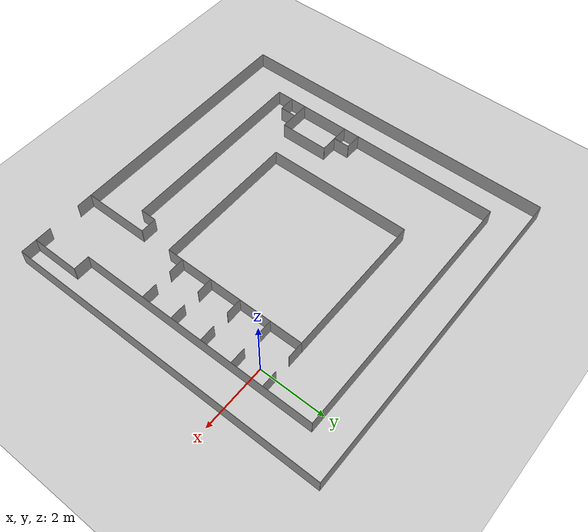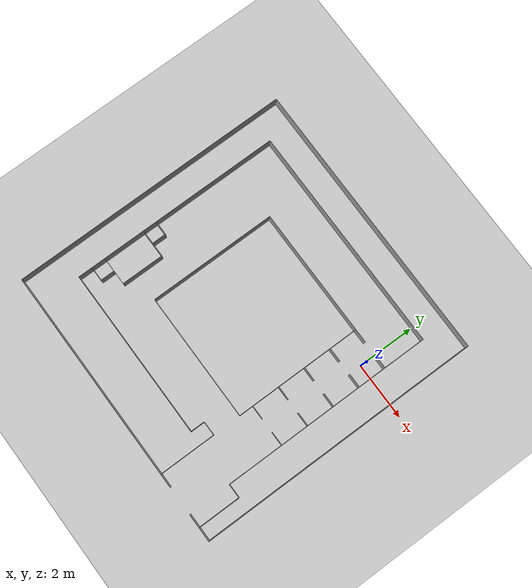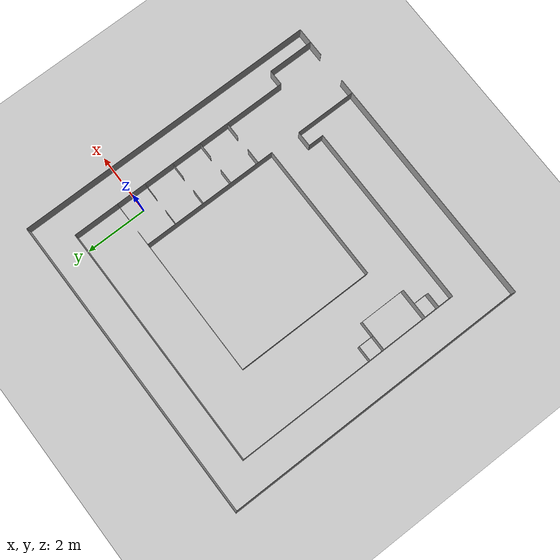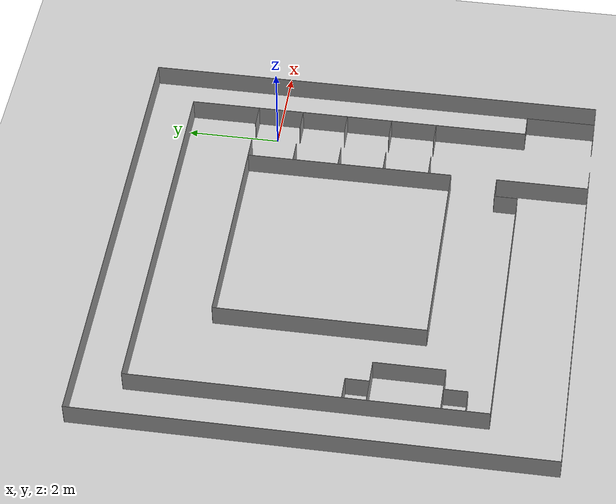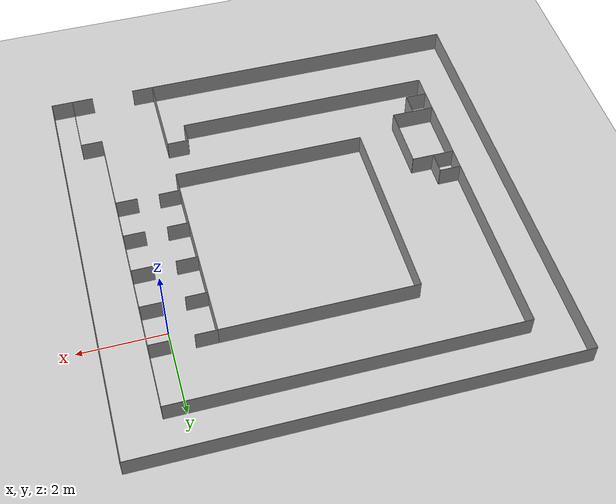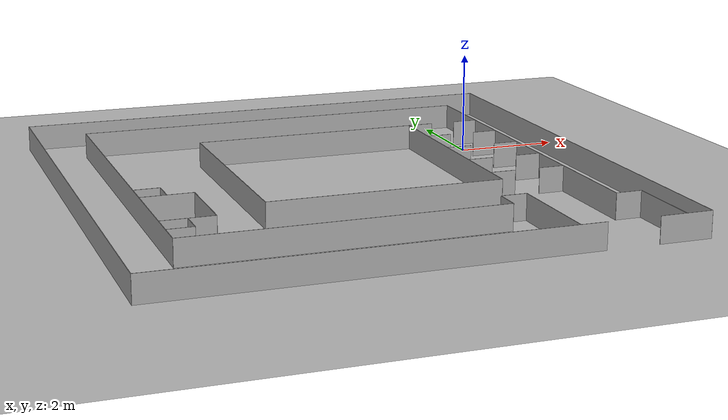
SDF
<sdf version="1.6">
  <world name="default">
    <model name="unit_box_35">
  <pose frame="">-0.75 -3.5 0.25 0 0 0</pose>
  <link name="link">
    <inertial>
      <mass>1</mass>
      <inertia>
        <ixx>0</ixx>
        <ixy>0</ixy>
        <ixz>0</ixz>
        <iyy>0</iyy>
        <iyz>0</iyz>
        <izz>0</izz>
      </inertia>
    </inertial>
    <collision name="collision">
      <geometry>
        <box>
          <size>0.49 0.01 0.5 0 0 0</size>
        </box>
      </geometry>
      <max_contacts>10</max_contacts>
      <surface>
        <contact>
          <ode/>
        </contact>
        <bounce/>
        <friction>
          <torsional>
            <ode/>
          </torsional>
          <ode/>
        </friction>
      </surface>
    </collision>
    <visual name="visual">
      <geometry>
        <box>
          <size>0.5 0.01 0.5 0 0 0</size>
        </box>
      </geometry>
      <material>
        <script>
          <name>Gazebo/Grey</name>
          <uri>file://media/materials/scripts/gazebo.material</uri>
        </script>
      </material>
    </visual>
    <self_collide>0</self_collide>
    <enable_wind>0</enable_wind>
    <kinematic>0</kinematic>
  </link>
</model><model name="unit_box_34">
  <pose frame="">0.25 -3.5 0.25 0 0 0</pose>
  <link name="link">
    <inertial>
      <mass>1</mass>
      <inertia>
        <ixx>0</ixx>
        <ixy>0</ixy>
        <ixz>0</ixz>
        <iyy>0</iyy>
        <iyz>0</iyz>
        <izz>0</izz>
      </inertia>
    </inertial>
    <collision name="collision">
      <geometry>
        <box>
          <size>0.49 0.01 0.5 0 0 0</size>
        </box>
      </geometry>
      <max_contacts>10</max_contacts>
      <surface>
        <contact>
          <ode/>
        </contact>
        <bounce/>
        <friction>
          <torsional>
            <ode/>
          </torsional>
          <ode/>
        </friction>
      </surface>
    </collision>
    <visual name="visual">
      <geometry>
        <box>
          <size>0.5 0.01 0.5 0 0 0</size>
        </box>
      </geometry>
      <material>
        <script>
          <name>Gazebo/Grey</name>
          <uri>file://media/materials/scripts/gazebo.material</uri>
        </script>
      </material>
    </visual>
    <self_collide>0</self_collide>
    <enable_wind>0</enable_wind>
    <kinematic>0</kinematic>
  </link>
</model><model name="unit_box_33">
  <pose frame="">-0.75 -2.5 0.25 0 0 0</pose>
  <link name="link">
    <inertial>
      <mass>1</mass>
      <inertia>
        <ixx>0</ixx>
        <ixy>0</ixy>
        <ixz>0</ixz>
        <iyy>0</iyy>
        <iyz>0</iyz>
        <izz>0</izz>
      </inertia>
    </inertial>
    <collision name="collision">
      <geometry>
        <box>
          <size>0.49 0.01 0.5 0 0 0</size>
        </box>
      </geometry>
      <max_contacts>10</max_contacts>
      <surface>
        <contact>
          <ode/>
        </contact>
        <bounce/>
        <friction>
          <torsional>
            <ode/>
          </torsional>
          <ode/>
        </friction>
      </surface>
    </collision>
    <visual name="visual">
      <geometry>
        <box>
          <size>0.5 0.01 0.5 0 0 0</size>
        </box>
      </geometry>
      <material>
        <script>
          <name>Gazebo/Grey</name>
          <uri>file://media/materials/scripts/gazebo.material</uri>
        </script>
      </material>
    </visual>
    <self_collide>0</self_collide>
    <enable_wind>0</enable_wind>
    <kinematic>0</kinematic>
  </link>
</model><model name="unit_box_32">
  <pose frame="">0.25 -2.5 0.25 0 0 0</pose>
  <link name="link">
    <inertial>
      <mass>1</mass>
      <inertia>
        <ixx>0</ixx>
        <ixy>0</ixy>
        <ixz>0</ixz>
        <iyy>0</iyy>
        <iyz>0</iyz>
        <izz>0</izz>
      </inertia>
    </inertial>
    <collision name="collision">
      <geometry>
        <box>
          <size>0.49 0.01 0.5 0 0 0</size>
        </box>
      </geometry>
      <max_contacts>10</max_contacts>
      <surface>
        <contact>
          <ode/>
        </contact>
        <bounce/>
        <friction>
          <torsional>
            <ode/>
          </torsional>
          <ode/>
        </friction>
      </surface>
    </collision>
    <visual name="visual">
      <geometry>
        <box>
          <size>0.5 0.01 0.5 0 0 0</size>
        </box>
      </geometry>
      <material>
        <script>
          <name>Gazebo/Grey</name>
          <uri>file://media/materials/scripts/gazebo.material</uri>
        </script>
      </material>
    </visual>
    <self_collide>0</self_collide>
    <enable_wind>0</enable_wind>
    <kinematic>0</kinematic>
  </link>
</model><model name="unit_box_31">
  <pose frame="">-0.75 -1.5 0.25 0 0 0</pose>
  <link name="link">
    <inertial>
      <mass>1</mass>
      <inertia>
        <ixx>0</ixx>
        <ixy>0</ixy>
        <ixz>0</ixz>
        <iyy>0</iyy>
        <iyz>0</iyz>
        <izz>0</izz>
      </inertia>
    </inertial>
    <collision name="collision">
      <geometry>
        <box>
          <size>0.49 0.01 0.5 0 0 0</size>
        </box>
      </geometry>
      <max_contacts>10</max_contacts>
      <surface>
        <contact>
          <ode/>
        </contact>
        <bounce/>
        <friction>
          <torsional>
            <ode/>
          </torsional>
          <ode/>
        </friction>
      </surface>
    </collision>
    <visual name="visual">
      <geometry>
        <box>
          <size>0.5 0.01 0.5 0 0 0</size>
        </box>
      </geometry>
      <material>
        <script>
          <name>Gazebo/Grey</name>
          <uri>file://media/materials/scripts/gazebo.material</uri>
        </script>
      </material>
    </visual>
    <self_collide>0</self_collide>
    <enable_wind>0</enable_wind>
    <kinematic>0</kinematic>
  </link>
</model><model name="unit_box_30">
  <pose frame="">0.25 -1.5 0.25 0 0 0</pose>
  <link name="link">
    <inertial>
      <mass>1</mass>
      <inertia>
        <ixx>0</ixx>
        <ixy>0</ixy>
        <ixz>0</ixz>
        <iyy>0</iyy>
        <iyz>0</iyz>
        <izz>0</izz>
      </inertia>
    </inertial>
    <collision name="collision">
      <geometry>
        <box>
          <size>0.49 0.01 0.5 0 0 0</size>
        </box>
      </geometry>
      <max_contacts>10</max_contacts>
      <surface>
        <contact>
          <ode/>
        </contact>
        <bounce/>
        <friction>
          <torsional>
            <ode/>
          </torsional>
          <ode/>
        </friction>
      </surface>
    </collision>
    <visual name="visual">
      <geometry>
        <box>
          <size>0.5 0.01 0.5 0 0 0</size>
        </box>
      </geometry>
      <material>
        <script>
          <name>Gazebo/Grey</name>
          <uri>file://media/materials/scripts/gazebo.material</uri>
        </script>
      </material>
    </visual>
    <self_collide>0</self_collide>
    <enable_wind>0</enable_wind>
    <kinematic>0</kinematic>
  </link>
</model><model name="unit_box_29">
  <pose frame="">-0.75 -0.5 0.25 0 0 0</pose>
  <link name="link">
    <inertial>
      <mass>1</mass>
      <inertia>
        <ixx>0</ixx>
        <ixy>0</ixy>
        <ixz>0</ixz>
        <iyy>0</iyy>
        <iyz>0</iyz>
        <izz>0</izz>
      </inertia>
    </inertial>
    <collision name="collision">
      <geometry>
        <box>
          <size>0.49 0.01 0.5 0 0 0</size>
        </box>
      </geometry>
      <max_contacts>10</max_contacts>
      <surface>
        <contact>
          <ode/>
        </contact>
        <bounce/>
        <friction>
          <torsional>
            <ode/>
          </torsional>
          <ode/>
        </friction>
      </surface>
    </collision>
    <visual name="visual">
      <geometry>
        <box>
          <size>0.5 0.01 0.5 0 0 0</size>
        </box>
      </geometry>
      <material>
        <script>
          <name>Gazebo/Grey</name>
          <uri>file://media/materials/scripts/gazebo.material</uri>
        </script>
      </material>
    </visual>
    <self_collide>0</self_collide>
    <enable_wind>0</enable_wind>
    <kinematic>0</kinematic>
  </link>
</model><model name="unit_box_28">
  <pose frame="">0.25 -0.5 0.25 0 0 0</pose>
  <link name="link">
    <inertial>
      <mass>1</mass>
      <inertia>
        <ixx>0</ixx>
        <ixy>0</ixy>
        <ixz>0</ixz>
        <iyy>0</iyy>
        <iyz>0</iyz>
        <izz>0</izz>
      </inertia>
    </inertial>
    <collision name="collision">
      <geometry>
        <box>
          <size>0.49 0.01 0.5 0 0 0</size>
        </box>
      </geometry>
      <max_contacts>10</max_contacts>
      <surface>
        <contact>
          <ode/>
        </contact>
        <bounce/>
        <friction>
          <torsional>
            <ode/>
          </torsional>
          <ode/>
        </friction>
      </surface>
    </collision>
    <visual name="visual">
      <geometry>
        <box>
          <size>0.5 0.01 0.5 0 0 0</size>
        </box>
      </geometry>
      <material>
        <script>
          <name>Gazebo/Grey</name>
          <uri>file://media/materials/scripts/gazebo.material</uri>
        </script>
      </material>
    </visual>
    <self_collide>0</self_collide>
    <enable_wind>0</enable_wind>
    <kinematic>0</kinematic>
  </link>
</model><model name="unit_box_27">
  <pose frame="">0.25 0.5 0.25 0 0 0</pose>
  <link name="link">
    <inertial>
      <mass>1</mass>
      <inertia>
        <ixx>0</ixx>
        <ixy>0</ixy>
        <ixz>0</ixz>
        <iyy>0</iyy>
        <iyz>0</iyz>
        <izz>0</izz>
      </inertia>
    </inertial>
    <collision name="collision">
      <geometry>
        <box>
          <size>0.49 0.01 0.5 0 0 0</size>
        </box>
      </geometry>
      <max_contacts>10</max_contacts>
      <surface>
        <contact>
          <ode/>
        </contact>
        <bounce/>
        <friction>
          <torsional>
            <ode/>
          </torsional>
          <ode/>
        </friction>
      </surface>
    </collision>
    <visual name="visual">
      <geometry>
        <box>
          <size>0.5 0.01 0.5 0 0 0</size>
        </box>
      </geometry>
      <material>
        <script>
          <name>Gazebo/Grey</name>
          <uri>file://media/materials/scripts/gazebo.material</uri>
        </script>
      </material>
    </visual>
    <self_collide>0</self_collide>
    <enable_wind>0</enable_wind>
    <kinematic>0</kinematic>
  </link>
</model><model name="unit_box_26">
  <pose frame="">-0.75 0.5 0.25 0 0 0</pose>
  <link name="link">
    <inertial>
      <mass>1</mass>
      <inertia>
        <ixx>0</ixx>
        <ixy>0</ixy>
        <ixz>0</ixz>
        <iyy>0</iyy>
        <iyz>0</iyz>
        <izz>0</izz>
      </inertia>
    </inertial>
    <collision name="collision">
      <geometry>
        <box>
          <size>0.49 0.01 0.5 0 0 0</size>
        </box>
      </geometry>
      <max_contacts>10</max_contacts>
      <surface>
        <contact>
          <ode/>
        </contact>
        <bounce/>
        <friction>
          <torsional>
            <ode/>
          </torsional>
          <ode/>
        </friction>
      </surface>
    </collision>
    <visual name="visual">
      <geometry>
        <box>
          <size>0.5 0.01 0.5 0 0 0</size>
        </box>
      </geometry>
      <material>
        <script>
          <name>Gazebo/Grey</name>
          <uri>file://media/materials/scripts/gazebo.material</uri>
        </script>
      </material>
    </visual>
    <self_collide>0</self_collide>
    <enable_wind>0</enable_wind>
    <kinematic>0</kinematic>
  </link>
</model><model name="unit_box_25">
  <pose frame="">-7.25 -5.0 0.25 0 0 0</pose>
  <link name="link">
    <inertial>
      <mass>1</mass>
      <inertia>
        <ixx>0</ixx>
        <ixy>0</ixy>
        <ixz>0</ixz>
        <iyy>0</iyy>
        <iyz>0</iyz>
        <izz>0</izz>
      </inertia>
    </inertial>
    <collision name="collision">
      <geometry>
        <box>
          <size>0.49 0.01 0.5 0 0 0</size>
        </box>
      </geometry>
      <max_contacts>10</max_contacts>
      <surface>
        <contact>
          <ode/>
        </contact>
        <bounce/>
        <friction>
          <torsional>
            <ode/>
          </torsional>
          <ode/>
        </friction>
      </surface>
    </collision>
    <visual name="visual">
      <geometry>
        <box>
          <size>0.5 0.01 0.5 0 0 0</size>
        </box>
      </geometry>
      <material>
        <script>
          <name>Gazebo/Grey</name>
          <uri>file://media/materials/scripts/gazebo.material</uri>
        </script>
      </material>
    </visual>
    <self_collide>0</self_collide>
    <enable_wind>0</enable_wind>
    <kinematic>0</kinematic>
  </link>
</model><model name="unit_box_24">
  <pose frame="">-7.0 -4.75 0.25 0 0 0</pose>
  <link name="link">
    <inertial>
      <mass>1</mass>
      <inertia>
        <ixx>0</ixx>
        <ixy>0</ixy>
        <ixz>0</ixz>
        <iyy>0</iyy>
        <iyz>0</iyz>
        <izz>0</izz>
      </inertia>
    </inertial>
    <collision name="collision">
      <geometry>
        <box>
          <size>0.01 0.49 0.5 0 0 0</size>
        </box>
      </geometry>
      <max_contacts>10</max_contacts>
      <surface>
        <contact>
          <ode/>
        </contact>
        <bounce/>
        <friction>
          <torsional>
            <ode/>
          </torsional>
          <ode/>
        </friction>
      </surface>
    </collision>
    <visual name="visual">
      <geometry>
        <box>
          <size>0.01 0.5 0.5 0 0 0</size>
        </box>
      </geometry>
      <material>
        <script>
          <name>Gazebo/Grey</name>
          <uri>file://media/materials/scripts/gazebo.material</uri>
        </script>
      </material>
    </visual>
    <self_collide>0</self_collide>
    <enable_wind>0</enable_wind>
    <kinematic>0</kinematic>
  </link>
</model><model name="unit_box_23">
  <pose frame="">-7.25 -2.5 0.25 0 0 0</pose>
  <link name="link">
    <inertial>
      <mass>1</mass>
      <inertia>
        <ixx>0</ixx>
        <ixy>0</ixy>
        <ixz>0</ixz>
        <iyy>0</iyy>
        <iyz>0</iyz>
        <izz>0</izz>
      </inertia>
    </inertial>
    <collision name="collision">
      <geometry>
        <box>
          <size>0.49 0.01 0.5 0 0 0</size>
        </box>
      </geometry>
      <max_contacts>10</max_contacts>
      <surface>
        <contact>
          <ode/>
        </contact>
        <bounce/>
        <friction>
          <torsional>
            <ode/>
          </torsional>
          <ode/>
        </friction>
      </surface>
    </collision>
    <visual name="visual">
      <geometry>
        <box>
          <size>0.5 0.01 0.5 0 0 0</size>
        </box>
      </geometry>
      <material>
        <script>
          <name>Gazebo/Grey</name>
          <uri>file://media/materials/scripts/gazebo.material</uri>
        </script>
      </material>
    </visual>
    <self_collide>0</self_collide>
    <enable_wind>0</enable_wind>
    <kinematic>0</kinematic>
  </link>
</model><model name="unit_box_22">
  <pose frame="">-7.0 -2.75 0.25 0 0 0</pose>
  <link name="link">
    <inertial>
      <mass>1</mass>
      <inertia>
        <ixx>0</ixx>
        <ixy>0</ixy>
        <ixz>0</ixz>
        <iyy>0</iyy>
        <iyz>0</iyz>
        <izz>0</izz>
      </inertia>
    </inertial>
    <collision name="collision">
      <geometry>
        <box>
          <size>0.01 0.49 0.5 0 0 0</size>
        </box>
      </geometry>
      <max_contacts>10</max_contacts>
      <surface>
        <contact>
          <ode/>
        </contact>
        <bounce/>
        <friction>
          <torsional>
            <ode/>
          </torsional>
          <ode/>
        </friction>
      </surface>
    </collision>
    <visual name="visual">
      <geometry>
        <box>
          <size>0.01 0.5 0.5 0 0 0</size>
        </box>
      </geometry>
      <material>
        <script>
          <name>Gazebo/Grey</name>
          <uri>file://media/materials/scripts/gazebo.material</uri>
        </script>
      </material>
    </visual>
    <self_collide>0</self_collide>
    <enable_wind>0</enable_wind>
    <kinematic>0</kinematic>
  </link>
</model><model name="unit_box_21">
  <pose frame="">-7.0 -4.5 0.25 0 0 0</pose>
  <link name="link">
    <inertial>
      <mass>1</mass>
      <inertia>
        <ixx>0</ixx>
        <ixy>0</ixy>
        <ixz>0</ixz>
        <iyy>0</iyy>
        <iyz>0</iyz>
        <izz>0</izz>
      </inertia>
    </inertial>
    <collision name="collision">
      <geometry>
        <box>
          <size>0.99 0.01 0.5 0 0 0</size>
        </box>
      </geometry>
      <max_contacts>10</max_contacts>
      <surface>
        <contact>
          <ode/>
        </contact>
        <bounce/>
        <friction>
          <torsional>
            <ode/>
          </torsional>
          <ode/>
        </friction>
      </surface>
    </collision>
    <visual name="visual">
      <geometry>
        <box>
          <size>1.0 0.01 0.5 0 0 0</size>
        </box>
      </geometry>
      <material>
        <script>
          <name>Gazebo/Grey</name>
          <uri>file://media/materials/scripts/gazebo.material</uri>
        </script>
      </material>
    </visual>
    <self_collide>0</self_collide>
    <enable_wind>0</enable_wind>
    <kinematic>0</kinematic>
  </link>
</model><model name="unit_box_20">
  <pose frame="">-7.0 -3.0 0.25 0 0 0</pose>
  <link name="link">
    <inertial>
      <mass>1</mass>
      <inertia>
        <ixx>0</ixx>
        <ixy>0</ixy>
        <ixz>0</ixz>
        <iyy>0</iyy>
        <iyz>0</iyz>
        <izz>0</izz>
      </inertia>
    </inertial>
    <collision name="collision">
      <geometry>
        <box>
          <size>0.99 0.01 0.5 0 0 0</size>
        </box>
      </geometry>
      <max_contacts>10</max_contacts>
      <surface>
        <contact>
          <ode/>
        </contact>
        <bounce/>
        <friction>
          <torsional>
            <ode/>
          </torsional>
          <ode/>
        </friction>
      </surface>
    </collision>
    <visual name="visual">
      <geometry>
        <box>
          <size>1.0 0.01 0.5 0 0 0</size>
        </box>
      </geometry>
      <material>
        <script>
          <name>Gazebo/Grey</name>
          <uri>file://media/materials/scripts/gazebo.material</uri>
        </script>
      </material>
    </visual>
    <self_collide>0</self_collide>
    <enable_wind>0</enable_wind>
    <kinematic>0</kinematic>
  </link>
</model><model name="unit_box_19">
  <pose frame="">-6.5 -3.75 0.25 0 0 0</pose>
  <link name="link">
    <inertial>
      <mass>1</mass>
      <inertia>
        <ixx>0</ixx>
        <ixy>0</ixy>
        <ixz>0</ixz>
        <iyy>0</iyy>
        <iyz>0</iyz>
        <izz>0</izz>
      </inertia>
    </inertial>
    <collision name="collision">
      <geometry>
        <box>
          <size>0.01 1.49 0.5 0 0 0</size>
        </box>
      </geometry>
      <max_contacts>10</max_contacts>
      <surface>
        <contact>
          <ode/>
        </contact>
        <bounce/>
        <friction>
          <torsional>
            <ode/>
          </torsional>
          <ode/>
        </friction>
      </surface>
    </collision>
    <visual name="visual">
      <geometry>
        <box>
          <size>0.01 1.5 0.5 0 0 0</size>
        </box>
      </geometry>
      <material>
        <script>
          <name>Gazebo/Grey</name>
          <uri>file://media/materials/scripts/gazebo.material</uri>
        </script>
      </material>
    </visual>
    <self_collide>0</self_collide>
    <enable_wind>0</enable_wind>
    <kinematic>0</kinematic>
  </link>
</model><model name="unit_box_18">
  <pose frame="">-3.25 -4.0 0.25 0 0 0</pose>
  <link name="link">
    <inertial>
      <mass>1</mass>
      <inertia>
        <ixx>0</ixx>
        <ixy>0</ixy>
        <ixz>0</ixz>
        <iyy>0</iyy>
        <iyz>0</iyz>
        <izz>0</izz>
      </inertia>
    </inertial>
    <collision name="collision">
      <geometry>
        <box>
          <size>4.49 0.01 0.5 0 0 0</size>
        </box>
      </geometry>
      <max_contacts>10</max_contacts>
      <surface>
        <contact>
          <ode/>
        </contact>
        <bounce/>
        <friction>
          <torsional>
            <ode/>
          </torsional>
          <ode/>
        </friction>
      </surface>
    </collision>
    <visual name="visual">
      <geometry>
        <box>
          <size>4.5 0.01 0.5 0 0 0</size>
        </box>
      </geometry>
      <material>
        <script>
          <name>Gazebo/Grey</name>
          <uri>file://media/materials/scripts/gazebo.material</uri>
        </script>
      </material>
    </visual>
    <self_collide>0</self_collide>
    <enable_wind>0</enable_wind>
    <kinematic>0</kinematic>
  </link>
</model><model name="unit_box_17">
  <pose frame="">-3.25 0.5 0.25 0 0 0</pose>
  <link name="link">
    <inertial>
      <mass>1</mass>
      <inertia>
        <ixx>0</ixx>
        <ixy>0</ixy>
        <ixz>0</ixz>
        <iyy>0</iyy>
        <iyz>0</iyz>
        <izz>0</izz>
      </inertia>
    </inertial>
    <collision name="collision">
      <geometry>
        <box>
          <size>4.49 0.01 0.5 0 0 0</size>
        </box>
      </geometry>
      <max_contacts>10</max_contacts>
      <surface>
        <contact>
          <ode/>
        </contact>
        <bounce/>
        <friction>
          <torsional>
            <ode/>
          </torsional>
          <ode/>
        </friction>
      </surface>
    </collision>
    <visual name="visual">
      <geometry>
        <box>
          <size>4.5 0.01 0.5 0 0 0</size>
        </box>
      </geometry>
      <material>
        <script>
          <name>Gazebo/Grey</name>
          <uri>file://media/materials/scripts/gazebo.material</uri>
        </script>
      </material>
    </visual>
    <self_collide>0</self_collide>
    <enable_wind>0</enable_wind>
    <kinematic>0</kinematic>
  </link>
</model><model name="unit_box_16">
  <pose frame="">-5.5 -1.75 0.25 0 0 0</pose>
  <link name="link">
    <inertial>
      <mass>1</mass>
      <inertia>
        <ixx>0</ixx>
        <ixy>0</ixy>
        <ixz>0</ixz>
        <iyy>0</iyy>
        <iyz>0</iyz>
        <izz>0</izz>
      </inertia>
    </inertial>
    <collision name="collision">
      <geometry>
        <box>
          <size>0.01 4.49 0.5 0 0 0</size>
        </box>
      </geometry>
      <max_contacts>10</max_contacts>
      <surface>
        <contact>
          <ode/>
        </contact>
        <bounce/>
        <friction>
          <torsional>
            <ode/>
          </torsional>
          <ode/>
        </friction>
      </surface>
    </collision>
    <visual name="visual">
      <geometry>
        <box>
          <size>0.01 4.5 0.5 0 0 0</size>
        </box>
      </geometry>
      <material>
        <script>
          <name>Gazebo/Grey</name>
          <uri>file://media/materials/scripts/gazebo.material</uri>
        </script>
      </material>
    </visual>
    <self_collide>0</self_collide>
    <enable_wind>0</enable_wind>
    <kinematic>0</kinematic>
  </link>
</model><model name="unit_box_15">
  <pose frame="">-1.0 -6.0 0.25 0 0 0</pose>
  <link name="link">
    <inertial>
      <mass>1</mass>
      <inertia>
        <ixx>0</ixx>
        <ixy>0</ixy>
        <ixz>0</ixz>
        <iyy>0</iyy>
        <iyz>0</iyz>
        <izz>0</izz>
      </inertia>
    </inertial>
    <collision name="collision">
      <geometry>
        <box>
          <size>0.01 1.99 0.5 0 0 0</size>
        </box>
      </geometry>
      <max_contacts>10</max_contacts>
      <surface>
        <contact>
          <ode/>
        </contact>
        <bounce/>
        <friction>
          <torsional>
            <ode/>
          </torsional>
          <ode/>
        </friction>
      </surface>
    </collision>
    <visual name="visual">
      <geometry>
        <box>
          <size>0.01 2.0 0.5 0 0 0</size>
        </box>
      </geometry>
      <material>
        <script>
          <name>Gazebo/Grey</name>
          <uri>file://media/materials/scripts/gazebo.material</uri>
        </script>
      </material>
    </visual>
    <self_collide>0</self_collide>
    <enable_wind>0</enable_wind>
    <kinematic>0</kinematic>
  </link>
</model><model name="unit_box_14">
  <pose frame="">-1.25 -5.0 0.25 0 0 0</pose>
  <link name="link">
    <inertial>
      <mass>1</mass>
      <inertia>
        <ixx>0</ixx>
        <ixy>0</ixy>
        <ixz>0</ixz>
        <iyy>0</iyy>
        <iyz>0</iyz>
        <izz>0</izz>
      </inertia>
    </inertial>
    <collision name="collision">
      <geometry>
        <box>
          <size>0.49 0.01 0.5 0 0 0</size>
        </box>
      </geometry>
      <max_contacts>10</max_contacts>
      <surface>
        <contact>
          <ode/>
        </contact>
        <bounce/>
        <friction>
          <torsional>
            <ode/>
          </torsional>
          <ode/>
        </friction>
      </surface>
    </collision>
    <visual name="visual">
      <geometry>
        <box>
          <size>0.5 0.01 0.5 0 0 0</size>
        </box>
      </geometry>
      <material>
        <script>
          <name>Gazebo/Grey</name>
          <uri>file://media/materials/scripts/gazebo.material</uri>
        </script>
      </material>
    </visual>
    <self_collide>0</self_collide>
    <enable_wind>0</enable_wind>
    <kinematic>0</kinematic>
  </link>
</model><model name="unit_box_13">
  <pose frame="">-1.5 -5.25 0.25 0 0 0</pose>
  <link name="link">
    <inertial>
      <mass>1</mass>
      <inertia>
        <ixx>0</ixx>
        <ixy>0</ixy>
        <ixz>0</ixz>
        <iyy>0</iyy>
        <iyz>0</iyz>
        <izz>0</izz>
      </inertia>
    </inertial>
    <collision name="collision">
      <geometry>
        <box>
          <size>0.01 0.49 0.5 0 0 0</size>
        </box>
      </geometry>
      <max_contacts>10</max_contacts>
      <surface>
        <contact>
          <ode/>
        </contact>
        <bounce/>
        <friction>
          <torsional>
            <ode/>
          </torsional>
          <ode/>
        </friction>
      </surface>
    </collision>
    <visual name="visual">
      <geometry>
        <box>
          <size>0.01 0.5 0.5 0 0 0</size>
        </box>
      </geometry>
      <material>
        <script>
          <name>Gazebo/Grey</name>
          <uri>file://media/materials/scripts/gazebo.material</uri>
        </script>
      </material>
    </visual>
    <self_collide>0</self_collide>
    <enable_wind>0</enable_wind>
    <kinematic>0</kinematic>
  </link>
</model><model name="unit_box_12">
  <pose frame="">-4.5 -5.5 0.25 0 0 0</pose>
  <link name="link">
    <inertial>
      <mass>1</mass>
      <inertia>
        <ixx>0</ixx>
        <ixy>0</ixy>
        <ixz>0</ixz>
        <iyy>0</iyy>
        <iyz>0</iyz>
        <izz>0</izz>
      </inertia>
    </inertial>
    <collision name="collision">
      <geometry>
        <box>
          <size>5.99 0.01 0.5 0 0 0</size>
        </box>
      </geometry>
      <max_contacts>10</max_contacts>
      <surface>
        <contact>
          <ode/>
        </contact>
        <bounce/>
        <friction>
          <torsional>
            <ode/>
          </torsional>
          <ode/>
        </friction>
      </surface>
    </collision>
    <visual name="visual">
      <geometry>
        <box>
          <size>6.0 0.01 0.5 0 0 0</size>
        </box>
      </geometry>
      <material>
        <script>
          <name>Gazebo/Grey</name>
          <uri>file://media/materials/scripts/gazebo.material</uri>
        </script>
      </material>
    </visual>
    <self_collide>0</self_collide>
    <enable_wind>0</enable_wind>
    <kinematic>0</kinematic>
  </link>
</model><model name="unit_box_11">
  <pose frame="">-1.0 -1.75 0.25 0 0 0</pose>
  <link name="link">
    <inertial>
      <mass>1</mass>
      <inertia>
        <ixx>0</ixx>
        <ixy>0</ixy>
        <ixz>0</ixz>
        <iyy>0</iyy>
        <iyz>0</iyz>
        <izz>0</izz>
      </inertia>
    </inertial>
    <collision name="collision">
      <geometry>
        <box>
          <size>0.01 4.49 0.5 0 0 0</size>
        </box>
      </geometry>
      <max_contacts>10</max_contacts>
      <surface>
        <contact>
          <ode/>
        </contact>
        <bounce/>
        <friction>
          <torsional>
            <ode/>
          </torsional>
          <ode/>
        </friction>
      </surface>
    </collision>
    <visual name="visual">
      <geometry>
        <box>
          <size>0.01 4.5 0.5 0 0 0</size>
        </box>
      </geometry>
      <material>
        <script>
          <name>Gazebo/Grey</name>
          <uri>file://media/materials/scripts/gazebo.material</uri>
        </script>
      </material>
    </visual>
    <self_collide>0</self_collide>
    <enable_wind>0</enable_wind>
    <kinematic>0</kinematic>
  </link>
</model><model name="unit_box_10">
  <pose frame="">-3.5 2.0 0.25 0 0 0</pose>
  <link name="link">
    <inertial>
      <mass>1</mass>
      <inertia>
        <ixx>0</ixx>
        <ixy>0</ixy>
        <ixz>0</ixz>
        <iyy>0</iyy>
        <iyz>0</iyz>
        <izz>0</izz>
      </inertia>
    </inertial>
    <collision name="collision">
      <geometry>
        <box>
          <size>7.99 0.01 0.5 0 0 0</size>
        </box>
      </geometry>
      <max_contacts>10</max_contacts>
      <surface>
        <contact>
          <ode/>
        </contact>
        <bounce/>
        <friction>
          <torsional>
            <ode/>
          </torsional>
          <ode/>
        </friction>
      </surface>
    </collision>
    <visual name="visual">
      <geometry>
        <box>
          <size>8.0 0.01 0.5 0 0 0</size>
        </box>
      </geometry>
      <material>
        <script>
          <name>Gazebo/Grey</name>
          <uri>file://media/materials/scripts/gazebo.material</uri>
        </script>
      </material>
    </visual>
    <self_collide>0</self_collide>
    <enable_wind>0</enable_wind>
    <kinematic>0</kinematic>
  </link>
</model><model name="unit_box_9">
  <pose frame="">0.5 -1.75 0.25 0 0 0</pose>
  <link name="link">
    <inertial>
      <mass>1</mass>
      <inertia>
        <ixx>0</ixx>
        <ixy>0</ixy>
        <ixz>0</ixz>
        <iyy>0</iyy>
        <iyz>0</iyz>
        <izz>0</izz>
      </inertia>
    </inertial>
    <collision name="collision">
      <geometry>
        <box>
          <size>0.01 7.49 0.5 0 0 0</size>
        </box>
      </geometry>
      <max_contacts>10</max_contacts>
      <surface>
        <contact>
          <ode/>
        </contact>
        <bounce/>
        <friction>
          <torsional>
            <ode/>
          </torsional>
          <ode/>
        </friction>
      </surface>
    </collision>
    <visual name="visual">
      <geometry>
        <box>
          <size>0.01 7.5 0.5 0 0 0</size>
        </box>
      </geometry>
      <material>
        <script>
          <name>Gazebo/Grey</name>
          <uri>file://media/materials/scripts/gazebo.material</uri>
        </script>
      </material>
    </visual>
    <self_collide>0</self_collide>
    <enable_wind>0</enable_wind>
    <kinematic>0</kinematic>
  </link>
</model><model name="unit_box_8">
  <pose frame="">-7.5 -1.75 0.25 0 0 0</pose>
  <link name="link">
    <inertial>
      <mass>1</mass>
      <inertia>
        <ixx>0</ixx>
        <ixy>0</ixy>
        <ixz>0</ixz>
        <iyy>0</iyy>
        <iyz>0</iyz>
        <izz>0</izz>
      </inertia>
    </inertial>
    <collision name="collision">
      <geometry>
        <box>
          <size>0.01 7.49 0.5 0 0 0</size>
        </box>
      </geometry>
      <max_contacts>10</max_contacts>
      <surface>
        <contact>
          <ode/>
        </contact>
        <bounce/>
        <friction>
          <torsional>
            <ode/>
          </torsional>
          <ode/>
        </friction>
      </surface>
    </collision>
    <visual name="visual">
      <geometry>
        <box>
          <size>0.01 7.5 0.5 0 0 0</size>
        </box>
      </geometry>
      <material>
        <script>
          <name>Gazebo/Grey</name>
          <uri>file://media/materials/scripts/gazebo.material</uri>
        </script>
      </material>
    </visual>
    <self_collide>0</self_collide>
    <enable_wind>0</enable_wind>
    <kinematic>0</kinematic>
  </link>
</model><model name="unit_box_7">
  <pose frame="">0.75 -5.5 0.25 0 0 0</pose>
  <link name="link">
    <inertial>
      <mass>1</mass>
      <inertia>
        <ixx>0</ixx>
        <ixy>0</ixy>
        <ixz>0</ixz>
        <iyy>0</iyy>
        <iyz>0</iyz>
        <izz>0</izz>
      </inertia>
    </inertial>
    <collision name="collision">
      <geometry>
        <box>
          <size>0.49 0.01 0.5 0 0 0</size>
        </box>
      </geometry>
      <max_contacts>10</max_contacts>
      <surface>
        <contact>
          <ode/>
        </contact>
        <bounce/>
        <friction>
          <torsional>
            <ode/>
          </torsional>
          <ode/>
        </friction>
      </surface>
    </collision>
    <visual name="visual">
      <geometry>
        <box>
          <size>0.5 0.01 0.5 0 0 0</size>
        </box>
      </geometry>
      <material>
        <script>
          <name>Gazebo/Grey</name>
          <uri>file://media/materials/scripts/gazebo.material</uri>
        </script>
      </material>
    </visual>
    <self_collide>0</self_collide>
    <enable_wind>0</enable_wind>
    <kinematic>0</kinematic>
  </link>
</model><model name="unit_box_6">
  <pose frame="">1.0 -6.25 0.25 0 0 0</pose>
  <link name="link">
    <inertial>
      <mass>1</mass>
      <inertia>
        <ixx>0</ixx>
        <ixy>0</ixy>
        <ixz>0</ixz>
        <iyy>0</iyy>
        <iyz>0</iyz>
        <izz>0</izz>
      </inertia>
    </inertial>
    <collision name="collision">
      <geometry>
        <box>
          <size>0.01 1.49 0.5 0 0 0</size>
        </box>
      </geometry>
      <max_contacts>10</max_contacts>
      <surface>
        <contact>
          <ode/>
        </contact>
        <bounce/>
        <friction>
          <torsional>
            <ode/>
          </torsional>
          <ode/>
        </friction>
      </surface>
    </collision>
    <visual name="visual">
      <geometry>
        <box>
          <size>0.01 1.5 0.5 0 0 0</size>
        </box>
      </geometry>
      <material>
        <script>
          <name>Gazebo/Grey</name>
          <uri>file://media/materials/scripts/gazebo.material</uri>
        </script>
      </material>
    </visual>
    <self_collide>0</self_collide>
    <enable_wind>0</enable_wind>
    <kinematic>0</kinematic>
  </link>
</model><model name="unit_box_5">
  <pose frame="">1.0 -7.0 0.25 0 0 0</pose>
  <link name="link">
    <inertial>
      <mass>1</mass>
      <inertia>
        <ixx>0</ixx>
        <ixy>0</ixy>
        <ixz>0</ixz>
        <iyy>0</iyy>
        <iyz>0</iyz>
        <izz>0</izz>
      </inertia>
    </inertial>
    <collision name="collision">
      <geometry>
        <box>
          <size>0.99 0.01 0.5 0 0 0</size>
        </box>
      </geometry>
      <max_contacts>10</max_contacts>
      <surface>
        <contact>
          <ode/>
        </contact>
        <bounce/>
        <friction>
          <torsional>
            <ode/>
          </torsional>
          <ode/>
        </friction>
      </surface>
    </collision>
    <visual name="visual">
      <geometry>
        <box>
          <size>1.0 0.01 0.5 0 0 0</size>
        </box>
      </geometry>
      <material>
        <script>
          <name>Gazebo/Grey</name>
          <uri>file://media/materials/scripts/gazebo.material</uri>
        </script>
      </material>
    </visual>
    <self_collide>0</self_collide>
    <enable_wind>0</enable_wind>
    <kinematic>0</kinematic>
  </link>
</model><model name="unit_box_4">
  <pose frame="">-4.5 -7.0 0.25 0 0 0</pose>
  <link name="link">
    <inertial>
      <mass>1</mass>
      <inertia>
        <ixx>0</ixx>
        <ixy>0</ixy>
        <ixz>0</ixz>
        <iyy>0</iyy>
        <iyz>0</iyz>
        <izz>0</izz>
      </inertia>
    </inertial>
    <collision name="collision">
      <geometry>
        <box>
          <size>7.99 0.01 0.5 0 0 0</size>
        </box>
      </geometry>
      <max_contacts>10</max_contacts>
      <surface>
        <contact>
          <ode/>
        </contact>
        <bounce/>
        <friction>
          <torsional>
            <ode/>
          </torsional>
          <ode/>
        </friction>
      </surface>
    </collision>
    <visual name="visual">
      <geometry>
        <box>
          <size>8.0 0.01 0.5 0 0 0</size>
        </box>
      </geometry>
      <material>
        <script>
          <name>Gazebo/Grey</name>
          <uri>file://media/materials/scripts/gazebo.material</uri>
        </script>
      </material>
    </visual>
    <self_collide>0</self_collide>
    <enable_wind>0</enable_wind>
    <kinematic>0</kinematic>
  </link>
</model><model name="unit_box_3">
  <pose frame="">-8.5 -2.0 0.25 0 0 0</pose>
  <link name="link">
    <inertial>
      <mass>1</mass>
      <inertia>
        <ixx>0</ixx>
        <ixy>0</ixy>
        <ixz>0</ixz>
        <iyy>0</iyy>
        <iyz>0</iyz>
        <izz>0</izz>
      </inertia>
    </inertial>
    <collision name="collision">
      <geometry>
        <box>
          <size>0.01 9.99 0.5 0 0 0</size>
        </box>
      </geometry>
      <max_contacts>10</max_contacts>
      <surface>
        <contact>
          <ode/>
        </contact>
        <bounce/>
        <friction>
          <torsional>
            <ode/>
          </torsional>
          <ode/>
        </friction>
      </surface>
    </collision>
    <visual name="visual">
      <geometry>
        <box>
          <size>0.01 10.0 0.5 0 0 0</size>
        </box>
      </geometry>
      <material>
        <script>
          <name>Gazebo/Grey</name>
          <uri>file://media/materials/scripts/gazebo.material</uri>
        </script>
      </material>
    </visual>
    <self_collide>0</self_collide>
    <enable_wind>0</enable_wind>
    <kinematic>0</kinematic>
  </link>
</model><model name="unit_box_2">
  <pose frame="">-3.5 3.0 0.25 0 0 0</pose>
  <link name="link">
    <inertial>
      <mass>1</mass>
      <inertia>
        <ixx>0</ixx>
        <ixy>0</ixy>
        <ixz>0</ixz>
        <iyy>0</iyy>
        <iyz>0</iyz>
        <izz>0</izz>
      </inertia>
    </inertial>
    <collision name="collision">
      <geometry>
        <box>
          <size>9.99 0.01 0.5 0 0 0</size>
        </box>
      </geometry>
      <max_contacts>10</max_contacts>
      <surface>
        <contact>
          <ode/>
        </contact>
        <bounce/>
        <friction>
          <torsional>
            <ode/>
          </torsional>
          <ode/>
        </friction>
      </surface>
    </collision>
    <visual name="visual">
      <geometry>
        <box>
          <size>10.0 0.01 0.5 0 0 0</size>
        </box>
      </geometry>
      <material>
        <script>
          <name>Gazebo/Grey</name>
          <uri>file://media/materials/scripts/gazebo.material</uri>
        </script>
      </material>
    </visual>
    <self_collide>0</self_collide>
    <enable_wind>0</enable_wind>
    <kinematic>0</kinematic>
  </link>
</model><model name="unit_box_1">
  <pose frame="">1.5 -2.0 0.25 0 0 0</pose>
  <link name="link">
    <inertial>
      <mass>1</mass>
      <inertia>
        <ixx>0</ixx>
        <ixy>0</ixy>
        <ixz>0</ixz>
        <iyy>0</iyy>
        <iyz>0</iyz>
        <izz>0</izz>
      </inertia>
    </inertial>
    <collision name="collision">
      <geometry>
        <box>
          <size>0.01 9.99 0.5 0 0 0</size>
        </box>
      </geometry>
      <max_contacts>10</max_contacts>
      <surface>
        <contact>
          <ode/>
        </contact>
        <bounce/>
        <friction>
          <torsional>
            <ode/>
          </torsional>
          <ode/>
        </friction>
      </surface>
    </collision>
    <visual name="visual">
      <geometry>
        <box>
          <size>0.01 10.0 0.5 0 0 0</size>
        </box>
      </geometry>
      <material>
        <script>
          <name>Gazebo/Grey</name>
          <uri>file://media/materials/scripts/gazebo.material</uri>
        </script>
      </material>
    </visual>
    <self_collide>0</self_collide>
    <enable_wind>0</enable_wind>
    <kinematic>0</kinematic>
  </link>
</model><light name="sun" type="directional">
      <cast_shadows>1</cast_shadows>
      <pose frame="">0 0 10 0 -0 0</pose>
      <diffuse>0.8 0.8 0.8 1</diffuse>
      <specular>0.2 0.2 0.2 1</specular>
      <attenuation>
        <range>1000</range>
        <constant>0.9</constant>
        <linear>0.01</linear>
        <quadratic>0.001</quadratic>
      </attenuation>
      <direction>-0.5 0.1 -0.9</direction>
    </light>
    <model name="ground_plane">
      <static>1</static>
      <link name="link">
        <collision name="collision">
          <geometry>
            <plane>
              <normal>0 0 1</normal>
              <size>100 100</size>
            </plane>
          </geometry>
          <surface>
            <contact>
              <collide_bitmask>65535</collide_bitmask>
              <ode/>
            </contact>
            <friction>
              <ode>
                <mu>100</mu>
                <mu2>50</mu2>
              </ode>
              <torsional>
                <ode/>
              </torsional>
            </friction>
            <bounce/>
          </surface>
          <max_contacts>10</max_contacts>
        </collision>
        <visual name="visual">
          <cast_shadows>0</cast_shadows>
          <geometry>
            <plane>
              <normal>0 0 1</normal>
              <size>100 100</size>
            </plane>
          </geometry>
          <material>
            <script>
              <uri>file://media/materials/scripts/gazebo.material</uri>
              <name>Gazebo/Grey</name>
            </script>
          </material>
        </visual>
        <self_collide>0</self_collide>
        <enable_wind>0</enable_wind>
        <kinematic>0</kinematic>
      </link>
    </model>
    <gravity>0 0 -9.8</gravity>
    <magnetic_field>6e-06 2.3e-05 -4.2e-05</magnetic_field>
    <atmosphere type="adiabatic"/>
    <physics name="default_physics" default="0" type="ode">
      <max_step_size>0.001</max_step_size>
      <real_time_factor>1</real_time_factor>
      <real_time_update_rate>500</real_time_update_rate>
    </physics>
    <scene>
      <ambient>0.4 0.4 0.4 1</ambient>
      <background>0.7 0.7 0.7 1</background>
      <shadows>1</shadows>
    </scene>
    <audio>
      <device>default</device>
    </audio>
    <wind/>
    <spherical_coordinates>
      <surface_model>EARTH_WGS84</surface_model>
      <latitude_deg>0</latitude_deg>
      <longitude_deg>0</longitude_deg>
      <elevation>0</elevation>
      <heading_deg>0</heading_deg>
    </spherical_coordinates>
  </world>
</sdf>
